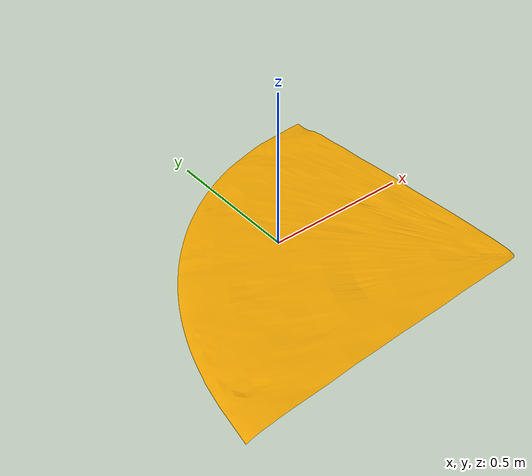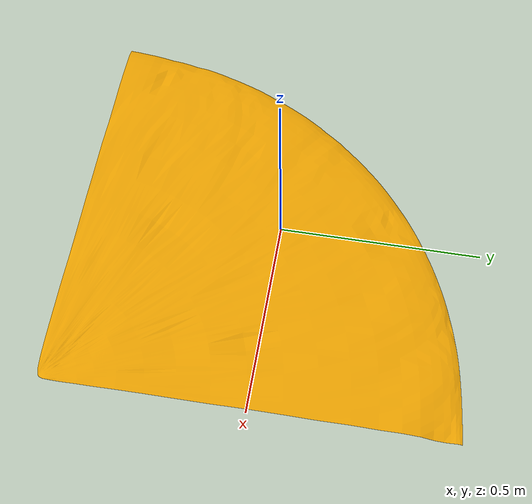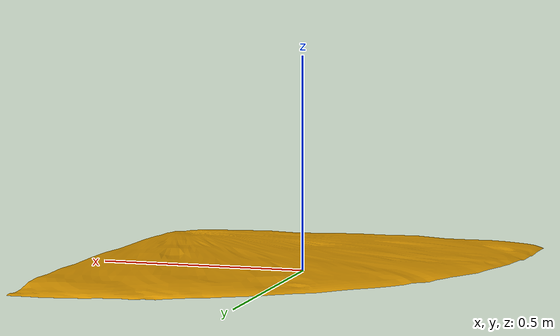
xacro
<?xml version="1.0"?>
<robot name="robot" xmlns:xacro="http://www.ros.org/wiki/xacro">
  <link name="RoadCorner_complex_link">
    <inertial>
      <origin xyz="0 0 0" rpy="0 0 0"/>
      <mass value="1"/>
      <inertia ixx="1" ixy="0" ixz="0" iyy="1" iyz="0" izz="1"/>
    </inertial>
    <visual>
      <origin xyz="0 0 0" rpy="0 0 0"/>
      <geometry>
        <mesh filename="package://gazebo_race_modules/meshes/RoadCorner_complex.dae"/>
      </geometry>
    </visual>
    <collision>
      <origin xyz="0 0 0" rpy="0 0 0"/>
      <geometry>
        <mesh filename="package://gazebo_race_modules/meshes/RoadCorner_complex.dae"/>
      </geometry>
    </collision>
  </link>
  <gazebo> <static>true</static></gazebo>
</robot>
